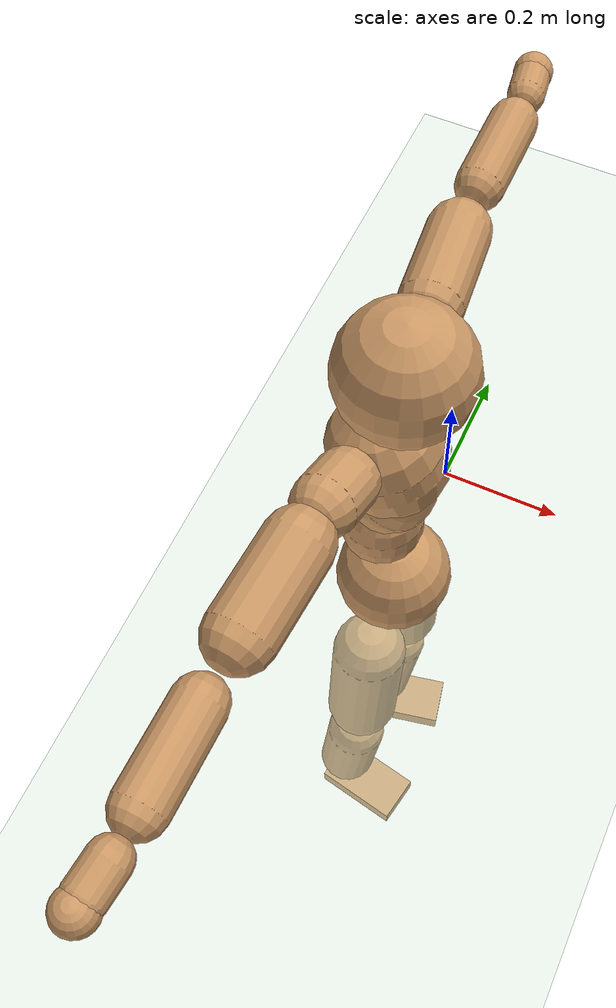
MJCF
<mujoco model="humanoid">
  <compiler coordinate="local"/>
  <default>
    <joint damping="0.0" armature="0.01" stiffness="0.0" limited="true"/>
    <geom conaffinity="1" condim="3" contype="7" margin="0.001" rgba="0.8 0.6 .4 1"/>
  </default>
  <asset>
    <texture type="skybox" builtin="gradient" rgb1=".4 .5 .6" rgb2="0 0 0" width="100" height="100"/>
    <texture builtin="flat" height="1278" mark="cross" markrgb="1 1 1" name="texgeom" random="0.01" rgb1="0.8 0.6 0.4" rgb2="0.8 0.6 0.4" type="cube" width="127"/>
    <texture builtin="checker" height="100" name="texplane" rgb1="0 0 0" rgb2="0.8 0.8 0.8" type="2d" width="100"/>
    <material name="MatPlane" reflectance="0.5" shininess="1" specular="1" texrepeat="60 60" texture="texplane"/>
    <material name="geom" texture="texgeom" texuniform="true"/>
  </asset>
  <worldbody>
    <light cutoff="100" diffuse="1 1 1" dir="-0 0 -1.3" directional="true" exponent="1" pos="0 0 1.3" specular=".1 .1 .1"/>
    <geom conaffinity="1" condim="3" name="floor" pos="0 0 0" rgba="0.8 0.9 0.8 1" size="100 100 .2" type="plane" material="MatPlane"/>
    <body name="Pelvis" pos="-0.0009 -0.2196 0.0271">
      <freejoint name="Pelvis"/>
      <geom type="sphere" contype="1" conaffinity="1" density="500" size="0.0932" pos="0.0000 0.0000 0.0000" name="Pelvis"/>
      <body name="L_Hip" pos="-0.0086 0.0729 -0.0901">
        <joint name="L_Hip_x" type="hinge" pos="0 0 0" axis="1 0 0" stiffness="800" damping="80" armature="0.02" range="-180.0000 180.0000"/>
        <joint name="L_Hip_y" type="hinge" pos="0 0 0" axis="0 1 0" stiffness="800" damping="80" armature="0.02" range="-180.0000 180.0000"/>
        <joint name="L_Hip_z" type="hinge" pos="0 0 0" axis="0 0 1" stiffness="800" damping="80" armature="0.02" range="-180.0000 180.0000"/>
        <geom type="capsule" contype="1" conaffinity="1" density="500" fromto="-0.0012 0.0058 -0.0703 -0.0047 0.0231 -0.2812" size="0.0626" name="L_Hip"/>
        <body name="L_Knee" pos="-0.0059 0.0289 -0.3515">
          <joint name="L_Knee_x" type="hinge" pos="0 0 0" axis="1 0 0" stiffness="800" damping="80" armature="0.02" range="-180.0000 180.0000"/>
          <joint name="L_Knee_y" type="hinge" pos="0 0 0" axis="0 1 0" stiffness="800" damping="80" armature="0.02" range="-180.0000 180.0000"/>
          <joint name="L_Knee_z" type="hinge" pos="0 0 0" axis="0 0 1" stiffness="800" damping="80" armature="0.02" range="-180.0000 180.0000"/>
          <geom type="capsule" contype="1" conaffinity="1" density="500" fromto="-0.0088 -0.0023 -0.0733 -0.0351 -0.0090 -0.2932" size="0.0537" name="L_Knee"/>
          <body name="L_Ankle" pos="-0.0439 -0.0113 -0.3665">
            <joint name="L_Ankle_x" type="hinge" pos="0 0 0" axis="1 0 0" stiffness="800" damping="80" armature="0.02" range="-180.0000 180.0000"/>
            <joint name="L_Ankle_y" type="hinge" pos="0 0 0" axis="0 1 0" stiffness="800" damping="80" armature="0.02" range="-180.0000 180.0000"/>
            <joint name="L_Ankle_z" type="hinge" pos="0 0 0" axis="0 0 1" stiffness="800" damping="80" armature="0.02" range="-180.0000 180.0000"/>
            <geom type="box" contype="1" conaffinity="1" density="500" pos="0.0560 0.0117 -0.0262" size="0.0804 0.0454 0.0196" quat="0.9947 0.0000 0.0000 0.1030" name="L_Ankle"/>
            <body name="L_Toe" pos="0.1121 0.0235 -0.0523">
              <joint name="L_Toe_x" type="hinge" pos="0 0 0" axis="1 0 0" stiffness="500" damping="50" armature="0.02" range="-180.0000 180.0000"/>
              <joint name="L_Toe_y" type="hinge" pos="0 0 0" axis="0 1 0" stiffness="500" damping="50" armature="0.02" range="-180.0000 180.0000"/>
              <joint name="L_Toe_z" type="hinge" pos="0 0 0" axis="0 0 1" stiffness="500" damping="50" armature="0.02" range="-180.0000 180.0000"/>
              <geom type="box" contype="1" conaffinity="1" density="500" pos="0.0000 0.0000 0.0258" size="0.0009 0.0023 0.001" quat="0.9940 0.0000 0.0000 0.1096" name="L_Toe"/>
            </body>
          </body>
        </body>
      </body>
      <body name="R_Hip" pos="-0.0057 -0.0703 -0.0894">
        <joint name="R_Hip_x" type="hinge" pos="0 0 0" axis="1 0 0" stiffness="800" damping="80" armature="0.02" range="-180.0000 180.0000"/>
        <joint name="R_Hip_y" type="hinge" pos="0 0 0" axis="0 1 0" stiffness="800" damping="80" armature="0.02" range="-180.0000 180.0000"/>
        <joint name="R_Hip_z" type="hinge" pos="0 0 0" axis="0 0 1" stiffness="800" damping="80" armature="0.02" range="-180.0000 180.0000"/>
        <geom type="capsule" contype="1" conaffinity="1" density="500" fromto="-0.0017 -0.0068 -0.0717 -0.0069 -0.0272 -0.2869" size="0.0619" name="R_Hip"/>
        <body name="R_Knee" pos="-0.0086 -0.034 -0.3586">
          <joint name="R_Knee_x" type="hinge" pos="0 0 0" axis="1 0 0" stiffness="800" damping="80" armature="0.02" range="-180.0000 180.0000"/>
          <joint name="R_Knee_y" type="hinge" pos="0 0 0" axis="0 1 0" stiffness="800" damping="80" armature="0.02" range="-180.0000 180.0000"/>
          <joint name="R_Knee_z" type="hinge" pos="0 0 0" axis="0 0 1" stiffness="800" damping="80" armature="0.02" range="-180.0000 180.0000"/>
          <geom type="capsule" contype="1" conaffinity="1" density="500" fromto="-0.0085 0.0027 -0.0734 -0.0340 0.0108 -0.2935" size="0.0539" name="R_Knee"/>
          <body name="R_Ankle" pos="-0.0425 0.0135 -0.3669">
            <joint name="R_Ankle_x" type="hinge" pos="0 0 0" axis="1 0 0" stiffness="800" damping="80" armature="0.02" range="-180.0000 180.0000"/>
            <joint name="R_Ankle_y" type="hinge" pos="0 0 0" axis="0 1 0" stiffness="800" damping="80" armature="0.02" range="-180.0000 180.0000"/>
            <joint name="R_Ankle_z" type="hinge" pos="0 0 0" axis="0 0 1" stiffness="800" damping="80" armature="0.02" range="-180.0000 180.0000"/>
            <geom type="box" contype="1" conaffinity="1" density="500" pos="0.0578 -0.0108 -0.0226" size="0.0813 0.0453 0.0194" quat="0.9957 0.0000 0.0000 -0.0922" name="R_Ankle"/>
            <body name="R_Toe" pos="0.1155 -0.0216 -0.0451">
              <joint name="R_Toe_x" type="hinge" pos="0 0 0" axis="1 0 0" stiffness="500" damping="50" armature="0.02" range="-180.0000 180.0000"/>
              <joint name="R_Toe_y" type="hinge" pos="0 0 0" axis="0 1 0" stiffness="500" damping="50" armature="0.02" range="-180.0000 180.0000"/>
              <joint name="R_Toe_z" type="hinge" pos="0 0 0" axis="0 0 1" stiffness="500" damping="50" armature="0.02" range="-180.0000 180.0000"/>
              <geom type="box" contype="1" conaffinity="1" density="500" pos="0.0000 0.0000 0.0243" size="0.0009 0.0023 0.0011" quat="0.9966 0.0000 0.0000 -0.0825" name="R_Toe"/>
            </body>
          </body>
        </body>
      </body>
      <body name="Torso" pos="-0.0218 -0.0023 0.1041">
        <joint name="Torso_x" type="hinge" pos="0 0 0" axis="1 0 0" stiffness="1000" damping="100" armature="0.02" range="-180.0000 180.0000"/>
        <joint name="Torso_y" type="hinge" pos="0 0 0" axis="0 1 0" stiffness="1000" damping="100" armature="0.02" range="-180.0000 180.0000"/>
        <joint name="Torso_z" type="hinge" pos="0 0 0" axis="0 0 1" stiffness="1000" damping="100" armature="0.02" range="-180.0000 180.0000"/>
        <geom type="capsule" contype="1" conaffinity="1" density="500" fromto="-0.0013 0.0022 0.0798 -0.0009 0.0015 0.0532" size="0.064635" name="Torso"/>
        <body name="Spine" pos="-0.0022 0.0037 0.133">
          <joint name="Spine_x" type="hinge" pos="0 0 0" axis="1 0 0" stiffness="1000" damping="100" armature="0.02" range="-180.0000 180.0000"/>
          <joint name="Spine_y" type="hinge" pos="0 0 0" axis="0 1 0" stiffness="1000" damping="100" armature="0.02" range="-180.0000 180.0000"/>
          <joint name="Spine_z" type="hinge" pos="0 0 0" axis="0 0 1" stiffness="1000" damping="100" armature="0.02" range="-180.0000 180.0000"/>
          <geom type="capsule" contype="1" conaffinity="1" density="500" fromto="0.0172 0.0010 0.0299 0.0115 0.0006 0.0199" size="0.064635" name="Spine"/>
          <body name="Chest" pos="0.0287 0.0016 0.0498">
            <joint name="Chest_x" type="hinge" pos="0 0 0" axis="1 0 0" stiffness="1000" damping="100" armature="0.02" range="-180.0000 180.0000"/>
            <joint name="Chest_y" type="hinge" pos="0 0 0" axis="0 1 0" stiffness="1000" damping="100" armature="0.02" range="-180.0000 180.0000"/>
            <joint name="Chest_z" type="hinge" pos="0 0 0" axis="0 0 1" stiffness="1000" damping="100" armature="0.02" range="-180.0000 180.0000"/>
            <geom type="capsule" contype="1" conaffinity="1" density="500" fromto="-0.0258 -0.0008 0.0882 -0.0172 -0.0005 0.0588" size="0.085746" name="Chest"/>
            <body name="Neck" pos="-0.0515 -0.0021 0.2086">
              <joint name="Neck_x" type="hinge" pos="0 0 0" axis="1 0 0" stiffness="500" damping="50" armature="0.02" range="-180.0000 180.0000"/>
              <joint name="Neck_y" type="hinge" pos="0 0 0" axis="0 1 0" stiffness="500" damping="50" armature="0.02" range="-180.0000 180.0000"/>
              <joint name="Neck_z" type="hinge" pos="0 0 0" axis="0 0 1" stiffness="500" damping="50" armature="0.02" range="-180.0000 180.0000"/>
              <geom type="capsule" contype="1" conaffinity="1" density="500" fromto="0.0098 0.0008 0.0126 0.0391 0.0031 0.0504" size="0.037386" name="Neck"/>
              <body name="Head" pos="0.0489 0.0039 0.063">
                <joint name="Head_x" type="hinge" pos="0 0 0" axis="1 0 0" stiffness="500" damping="50" armature="0.02" range="-180.0000 180.0000"/>
                <joint name="Head_y" type="hinge" pos="0 0 0" axis="0 1 0" stiffness="500" damping="50" armature="0.02" range="-180.0000 180.0000"/>
                <joint name="Head_z" type="hinge" pos="0 0 0" axis="0 0 1" stiffness="500" damping="50" armature="0.02" range="-180.0000 180.0000"/>
                <geom type="sphere" contype="1" conaffinity="1" density="500" size="0.0975" pos="0.0000 0.0000 0.0000" name="Head"/>
              </body>
            </body>
            <body name="L_Thorax" pos="-0.0361 0.0728 0.1173">
              <joint name="L_Thorax_x" type="hinge" pos="0 0 0" axis="1 0 0" stiffness="500" damping="50" armature="0.02" range="-180.0000 180.0000"/>
              <joint name="L_Thorax_y" type="hinge" pos="0 0 0" axis="0 1 0" stiffness="500" damping="50" armature="0.02" range="-180.0000 180.0000"/>
              <joint name="L_Thorax_z" type="hinge" pos="0 0 0" axis="0 0 1" stiffness="500" damping="50" armature="0.02" range="-180.0000 180.0000"/>
              <geom type="capsule" contype="1" conaffinity="1" density="500" fromto="-0.0013 0.0167 0.0060 -0.0053 0.0667 0.0242" size="0.0487" name="L_Thorax"/>
              <body name="L_Shoulder" pos="-0.0066 0.0834 0.0302">
                <joint name="L_Shoulder_x" type="hinge" pos="0 0 0" axis="1 0 0" stiffness="500" damping="50" armature="0.02" range="-720.0000 720.0000"/>
                <joint name="L_Shoulder_y" type="hinge" pos="0 0 0" axis="0 1 0" stiffness="500" damping="50" armature="0.02" range="-720.0000 720.0000"/>
                <joint name="L_Shoulder_z" type="hinge" pos="0 0 0" axis="0 0 1" stiffness="500" damping="50" armature="0.02" range="-720.0000 720.0000"/>
                <geom type="capsule" contype="1" conaffinity="1" density="500" fromto="-0.0053 0.0480 -0.0021 -0.0211 0.1920 -0.0083" size="0.0497" name="L_Shoulder"/>
                <body name="L_Elbow" pos="-0.0264 0.2401 -0.0103">
                  <joint name="L_Elbow_x" type="hinge" pos="0 0 0" axis="1 0 0" stiffness="500" damping="50" armature="0.02" range="-720.0000 720.0000"/>
                  <joint name="L_Elbow_y" type="hinge" pos="0 0 0" axis="0 1 0" stiffness="500" damping="50" armature="0.02" range="-720.0000 720.0000"/>
                  <joint name="L_Elbow_z" type="hinge" pos="0 0 0" axis="0 0 1" stiffness="500" damping="50" armature="0.02" range="-720.0000 720.0000"/>
                  <geom type="capsule" contype="1" conaffinity="1" density="500" fromto="0.0001 0.0458 0.0015 0.0004 0.1832 0.0062" size="0.0386" name="L_Elbow"/>
                  <body name="L_Wrist" pos="0.0005 0.229 0.0077">
                    <joint name="L_Wrist_x" type="hinge" pos="0 0 0" axis="1 0 0" stiffness="300" damping="30" armature="0.02" range="-180.0000 180.0000"/>
                    <joint name="L_Wrist_y" type="hinge" pos="0 0 0" axis="0 1 0" stiffness="300" damping="30" armature="0.02" range="-180.0000 180.0000"/>
                    <joint name="L_Wrist_z" type="hinge" pos="0 0 0" axis="0 0 1" stiffness="300" damping="30" armature="0.02" range="-180.0000 180.0000"/>
                    <geom type="capsule" contype="1" conaffinity="1" density="500" fromto="-0.0026 0.0156 -0.0019 -0.0103 0.0624 -0.0076" size="0.0297" name="L_Wrist"/>
                    <body name="L_Hand" pos="-0.0128 0.078 -0.0095">
                      <joint name="L_Hand_x" type="hinge" pos="0 0 0" axis="1 0 0" stiffness="300" damping="30" armature="0.02" range="-180.0000 180.0000"/>
                      <joint name="L_Hand_y" type="hinge" pos="0 0 0" axis="0 1 0" stiffness="300" damping="30" armature="0.02" range="-180.0000 180.0000"/>
                      <joint name="L_Hand_z" type="hinge" pos="0 0 0" axis="0 0 1" stiffness="300" damping="30" armature="0.02" range="-180.0000 180.0000"/>
                      <geom type="sphere" contype="1" conaffinity="1" density="500" size="0.0316" pos="0.0000 0.0000 0.0000" name="L_Hand"/>
                    </body>
                  </body>
                </body>
              </body>
            </body>
            <body name="R_Thorax" pos="-0.0415 -0.0746 0.1152">
              <joint name="R_Thorax_x" type="hinge" pos="0 0 0" axis="1 0 0" stiffness="500" damping="50" armature="0.02" range="-180.0000 180.0000"/>
              <joint name="R_Thorax_y" type="hinge" pos="0 0 0" axis="0 1 0" stiffness="500" damping="50" armature="0.02" range="-180.0000 180.0000"/>
              <joint name="R_Thorax_z" type="hinge" pos="0 0 0" axis="0 0 1" stiffness="500" damping="50" armature="0.02" range="-180.0000 180.0000"/>
              <geom type="capsule" contype="1" conaffinity="1" density="500" fromto="-0.0018 -0.0175 0.0063 -0.0071 -0.0699 0.0251" size="0.0476" name="R_Thorax"/>
              <body name="R_Shoulder" pos="-0.0088 -0.0874 0.0314">
                <joint name="R_Shoulder_x" type="hinge" pos="0 0 0" axis="1 0 0" stiffness="500" damping="50" armature="0.02" range="-720.0000 720.0000"/>
                <joint name="R_Shoulder_y" type="hinge" pos="0 0 0" axis="0 1 0" stiffness="500" damping="50" armature="0.02" range="-720.0000 720.0000"/>
                <joint name="R_Shoulder_z" type="hinge" pos="0 0 0" axis="0 0 1" stiffness="500" damping="50" armature="0.02" range="-720.0000 720.0000"/>
                <geom type="capsule" contype="1" conaffinity="1" density="500" fromto="-0.0039 -0.0472 -0.0023 -0.0157 -0.1887 -0.0094" size="0.0508" name="R_Shoulder"/>
                <body name="R_Elbow" pos="-0.0196 -0.2359 -0.0117">
                  <joint name="R_Elbow_x" type="hinge" pos="0 0 0" axis="1 0 0" stiffness="500" damping="50" armature="0.02" range="-720.0000 720.0000"/>
                  <joint name="R_Elbow_y" type="hinge" pos="0 0 0" axis="0 1 0" stiffness="500" damping="50" armature="0.02" range="-720.0000 720.0000"/>
                  <joint name="R_Elbow_z" type="hinge" pos="0 0 0" axis="0 0 1" stiffness="500" damping="50" armature="0.02" range="-720.0000 720.0000"/>
                  <geom type="capsule" contype="1" conaffinity="1" density="500" fromto="-0.0006 -0.0471 0.0015 -0.0026 -0.1884 0.0059" size="0.0384" name="R_Elbow"/>
                  <body name="R_Wrist" pos="-0.0032 -0.2355 0.0073">
                    <joint name="R_Wrist_x" type="hinge" pos="0 0 0" axis="1 0 0" stiffness="300" damping="30" armature="0.02" range="-180.0000 180.0000"/>
                    <joint name="R_Wrist_y" type="hinge" pos="0 0 0" axis="0 1 0" stiffness="300" damping="30" armature="0.02" range="-180.0000 180.0000"/>
                    <joint name="R_Wrist_z" type="hinge" pos="0 0 0" axis="0 0 1" stiffness="300" damping="30" armature="0.02" range="-180.0000 180.0000"/>
                    <geom type="capsule" contype="1" conaffinity="1" density="500" fromto="-0.0020 -0.0157 -0.0014 -0.0081 -0.0626 -0.0056" size="0.0302" name="R_Wrist"/>
                    <body name="R_Hand" pos="-0.0101 -0.0783 -0.007">
                      <joint name="R_Hand_x" type="hinge" pos="0 0 0" axis="1 0 0" stiffness="300" damping="30" armature="0.02" range="-180.0000 180.0000"/>
                      <joint name="R_Hand_y" type="hinge" pos="0 0 0" axis="0 1 0" stiffness="300" damping="30" armature="0.02" range="-180.0000 180.0000"/>
                      <joint name="R_Hand_z" type="hinge" pos="0 0 0" axis="0 0 1" stiffness="300" damping="30" armature="0.02" range="-180.0000 180.0000"/>
                      <geom type="sphere" contype="1" conaffinity="1" density="500" size="0.0316" pos="0.0000 0.0000 0.0000" name="R_Hand"/>
                    </body>
                  </body>
                </body>
              </body>
            </body>
          </body>
        </body>
      </body>
    </body>
  </worldbody>
  <actuator>
    <motor name="L_Hip_x" joint="L_Hip_x" gear="500"/>
    <motor name="L_Hip_y" joint="L_Hip_y" gear="500"/>
    <motor name="L_Hip_z" joint="L_Hip_z" gear="500"/>
    <motor name="L_Knee_x" joint="L_Knee_x" gear="500"/>
    <motor name="L_Knee_y" joint="L_Knee_y" gear="500"/>
    <motor name="L_Knee_z" joint="L_Knee_z" gear="500"/>
    <motor name="L_Ankle_x" joint="L_Ankle_x" gear="500"/>
    <motor name="L_Ankle_y" joint="L_Ankle_y" gear="500"/>
    <motor name="L_Ankle_z" joint="L_Ankle_z" gear="500"/>
    <motor name="L_Toe_x" joint="L_Toe_x" gear="500"/>
    <motor name="L_Toe_y" joint="L_Toe_y" gear="500"/>
    <motor name="L_Toe_z" joint="L_Toe_z" gear="500"/>
    <motor name="R_Hip_x" joint="R_Hip_x" gear="500"/>
    <motor name="R_Hip_y" joint="R_Hip_y" gear="500"/>
    <motor name="R_Hip_z" joint="R_Hip_z" gear="500"/>
    <motor name="R_Knee_x" joint="R_Knee_x" gear="500"/>
    <motor name="R_Knee_y" joint="R_Knee_y" gear="500"/>
    <motor name="R_Knee_z" joint="R_Knee_z" gear="500"/>
    <motor name="R_Ankle_x" joint="R_Ankle_x" gear="500"/>
    <motor name="R_Ankle_y" joint="R_Ankle_y" gear="500"/>
    <motor name="R_Ankle_z" joint="R_Ankle_z" gear="500"/>
    <motor name="R_Toe_x" joint="R_Toe_x" gear="500"/>
    <motor name="R_Toe_y" joint="R_Toe_y" gear="500"/>
    <motor name="R_Toe_z" joint="R_Toe_z" gear="500"/>
    <motor name="Torso_x" joint="Torso_x" gear="500"/>
    <motor name="Torso_y" joint="Torso_y" gear="500"/>
    <motor name="Torso_z" joint="Torso_z" gear="500"/>
    <motor name="Spine_x" joint="Spine_x" gear="500"/>
    <motor name="Spine_y" joint="Spine_y" gear="500"/>
    <motor name="Spine_z" joint="Spine_z" gear="500"/>
    <motor name="Chest_x" joint="Chest_x" gear="500"/>
    <motor name="Chest_y" joint="Chest_y" gear="500"/>
    <motor name="Chest_z" joint="Chest_z" gear="500"/>
    <motor name="Neck_x" joint="Neck_x" gear="500"/>
    <motor name="Neck_y" joint="Neck_y" gear="500"/>
    <motor name="Neck_z" joint="Neck_z" gear="500"/>
    <motor name="Head_x" joint="Head_x" gear="500"/>
    <motor name="Head_y" joint="Head_y" gear="500"/>
    <motor name="Head_z" joint="Head_z" gear="500"/>
    <motor name="L_Thorax_x" joint="L_Thorax_x" gear="500"/>
    <motor name="L_Thorax_y" joint="L_Thorax_y" gear="500"/>
    <motor name="L_Thorax_z" joint="L_Thorax_z" gear="500"/>
    <motor name="L_Shoulder_x" joint="L_Shoulder_x" gear="500"/>
    <motor name="L_Shoulder_y" joint="L_Shoulder_y" gear="500"/>
    <motor name="L_Shoulder_z" joint="L_Shoulder_z" gear="500"/>
    <motor name="L_Elbow_x" joint="L_Elbow_x" gear="500"/>
    <motor name="L_Elbow_y" joint="L_Elbow_y" gear="500"/>
    <motor name="L_Elbow_z" joint="L_Elbow_z" gear="500"/>
    <motor name="L_Wrist_x" joint="L_Wrist_x" gear="500"/>
    <motor name="L_Wrist_y" joint="L_Wrist_y" gear="500"/>
    <motor name="L_Wrist_z" joint="L_Wrist_z" gear="500"/>
    <motor name="L_Hand_x" joint="L_Hand_x" gear="500"/>
    <motor name="L_Hand_y" joint="L_Hand_y" gear="500"/>
    <motor name="L_Hand_z" joint="L_Hand_z" gear="500"/>
    <motor name="R_Thorax_x" joint="R_Thorax_x" gear="500"/>
    <motor name="R_Thorax_y" joint="R_Thorax_y" gear="500"/>
    <motor name="R_Thorax_z" joint="R_Thorax_z" gear="500"/>
    <motor name="R_Shoulder_x" joint="R_Shoulder_x" gear="500"/>
    <motor name="R_Shoulder_y" joint="R_Shoulder_y" gear="500"/>
    <motor name="R_Shoulder_z" joint="R_Shoulder_z" gear="500"/>
    <motor name="R_Elbow_x" joint="R_Elbow_x" gear="500"/>
    <motor name="R_Elbow_y" joint="R_Elbow_y" gear="500"/>
    <motor name="R_Elbow_z" joint="R_Elbow_z" gear="500"/>
    <motor name="R_Wrist_x" joint="R_Wrist_x" gear="500"/>
    <motor name="R_Wrist_y" joint="R_Wrist_y" gear="500"/>
    <motor name="R_Wrist_z" joint="R_Wrist_z" gear="500"/>
    <motor name="R_Hand_x" joint="R_Hand_x" gear="500"/>
    <motor name="R_Hand_y" joint="R_Hand_y" gear="500"/>
    <motor name="R_Hand_z" joint="R_Hand_z" gear="500"/>
  </actuator>
  <contact>
    <exclude body1="Torso" body2="Chest"/>
    <exclude body1="Head" body2="Chest"/>
    <exclude body1="R_Knee" body2="R_Toe"/>
    <exclude body1="R_Knee" body2="L_Ankle"/>
    <exclude body1="R_Knee" body2="L_Toe"/>
    <exclude body1="L_Knee" body2="L_Toe"/>
    <exclude body1="L_Knee" body2="R_Ankle"/>
    <exclude body1="L_Knee" body2="R_Toe"/>
    <exclude body1="L_Shoulder" body2="Chest"/>
    <exclude body1="R_Shoulder" body2="Chest"/>
  </contact>
  <sensor/>
  <size njmax="700" nconmax="700"/>
</mujoco>
